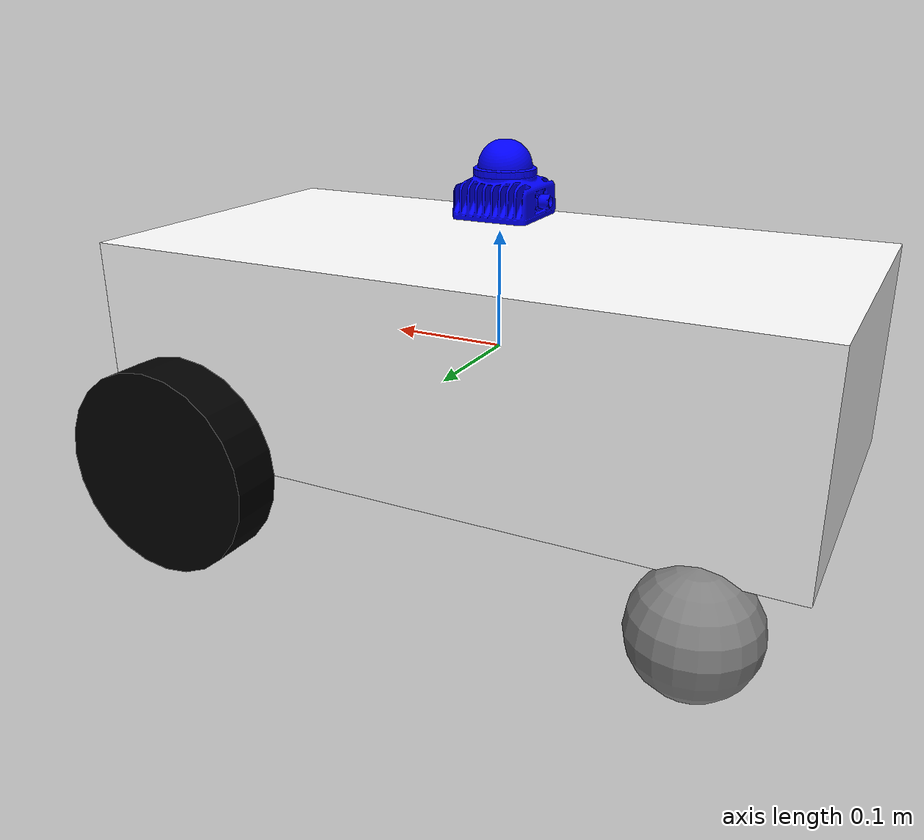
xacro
<?xml version="1.0"?>
<robot name="differential_robot" xmlns:xacro="http://www.ros.org/wiki/xacro">

  <xacro:property name="length_wheel" value="0.045" />
  <xacro:property name="radius_wheel" value="0.09" />

  <xacro:property name="chassis_length" value="0.6" />
  <xacro:property name="chassis_width" value="0.3" />
  <xacro:property name="chassis_height" value="0.18" />

  <xacro:property name="wheel_offset_x" value="0.225" />
  <xacro:property name="wheel_offset_y" value="${chassis_width/2 + length_wheel/2}" />
  <xacro:property name="wheel_offset_z" value="${-chassis_height/2}" />

  <xacro:property name="caster_radius" value="0.05" />
  <xacro:property name="caster_offset_z" value="${wheel_offset_z - radius_wheel + caster_radius}" />

  <xacro:property name="PI" value="3.1415926"/>

  <xacro:macro name="default_inertial" params="mass">
    <inertial>
      <mass value="${mass}" />
      <inertia ixx="0.1" ixy="0.0" ixz="0.0"
               iyy="0.1" iyz="0.0" izz="0.1" />
    </inertial>
  </xacro:macro>

  <xacro:arg name="xyz" default="0.0 0.0 0.14" />
  <xacro:arg name="rpy" default="0 0 0" />

  <link name="base_link">
    <visual>
      <geometry>
        <box size="${chassis_length} ${chassis_width} ${chassis_height}"/>
      </geometry>
      <origin rpy="0 0 0" xyz="0 0 0"/>
      <material name="white">
        <color rgba="1 1 1 1"/>
      </material>
    </visual>
    <collision>
      <geometry>
        <box size="${chassis_length} ${chassis_width} ${chassis_height}"/>
      </geometry>
      <origin rpy="0 0 0" xyz="0 0 0"/>
    </collision>
    <xacro:default_inertial mass="20.0"/>
  </link>

  <link name="left_front_wheel">
    <visual>
      <geometry>
        <cylinder length="${length_wheel}" radius="${radius_wheel}"/>
      </geometry>
      <origin rpy="0 0 0" xyz="0 0 0"/>
      <material name="black">
        <color rgba="0 0 0 1"/>
      </material>
    </visual>
    <collision>
      <geometry>
        <cylinder length="${length_wheel}" radius="${radius_wheel}"/>
      </geometry>
    </collision>
    <mu1>0.8</mu1>
    <mu2>0.8</mu2>
    <xacro:default_inertial mass="2.0"/>
  </link>

  <joint name="left_front_wheel_joint" type="fixed">
    <parent link="base_link"/>
    <child link="left_front_wheel"/>
    <origin rpy="${-PI/2} 0 0" xyz="${wheel_offset_x} ${wheel_offset_y} ${wheel_offset_z}"/>
    <axis xyz="0 0 1" />
  </joint>

  <link name="right_front_wheel">
    <visual>
      <geometry>
        <cylinder length="${length_wheel}" radius="${radius_wheel}"/>
      </geometry>
      <origin rpy="0 0 0" xyz="0 0 0"/>
      <material name="black"/>
    </visual>
    <collision>
      <geometry>
        <cylinder length="${length_wheel}" radius="${radius_wheel}"/>
      </geometry>
    </collision>
    <mu1>0.8</mu1>
    <mu2>0.8</mu2>
    <xacro:default_inertial mass="2.0"/>
  </link>

  <joint name="right_front_wheel_joint" type="fixed">
    <parent link="base_link"/>
    <child link="right_front_wheel"/>
    <origin rpy="${-PI/2} 0 0" xyz="${wheel_offset_x} -${wheel_offset_y} ${wheel_offset_z}"/>
    <axis xyz="0 0 1" />
  </joint>

  <link name="left_rear_caster">
    <visual>
      <geometry>
        <sphere radius="${caster_radius}"/>
      </geometry>
      <origin rpy="0 0 0" xyz="0 0 0"/>
      <material name="gray">
        <color rgba="0.5 0.5 0.5 1"/>
      </material>
    </visual>
    <collision>
      <geometry>
        <sphere radius="${caster_radius}"/>
      </geometry>
    </collision>
    <mu1>0.01</mu1>
    <mu2>0.01</mu2>
    <xacro:default_inertial mass="0.5"/>
  </link>

  <joint name="left_rear_caster_joint" type="fixed">
    <parent link="base_link"/>
    <child link="left_rear_caster"/>
    <origin rpy="0 0 0" xyz="-${wheel_offset_x} 0.15 ${caster_offset_z}"/>
  </joint>

  <link name="right_rear_caster">
    <visual>
      <geometry>
        <sphere radius="${caster_radius}"/>
      </geometry>
      <origin rpy="0 0 0" xyz="0 0 0"/>
      <material name="gray"/>
    </visual>
    <collision>
      <geometry>
        <sphere radius="${caster_radius}"/>
      </geometry>
    </collision>
    <mu1>0.01</mu1>
    <mu2>0.01</mu2>
    <xacro:default_inertial mass="0.5"/>
  </link>

  <joint name="right_rear_caster_joint" type="fixed">
    <parent link="base_link"/>
    <child link="right_rear_caster"/>
    <origin rpy="0 0 0" xyz="-${wheel_offset_x} -0.15 ${caster_offset_z}"/>
  </joint>

  <link name="livox_frame">
    <visual>
      <origin xyz="0.025 -0.0265 -0.025" rpy="${pi/2} 0 ${pi}"/>
      <geometry>
        <mesh filename="package://pb_rm_simulation/meshes/mid360.stl" scale="0.001 0.001 0.001"/>
      </geometry>
      <material name="blue">
        <color rgba="0 0 1.0 1" />
      </material>
    </visual>
  </link>

  <joint name="livox_joint" type="fixed">
    <origin xyz="$(arg xyz)" rpy="$(arg rpy)" />
    <parent link="base_link"/>
    <child link="livox_frame"/>
  </joint>

</robot>
